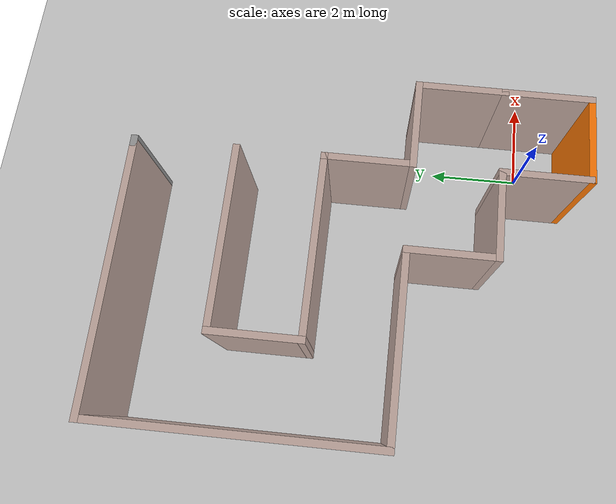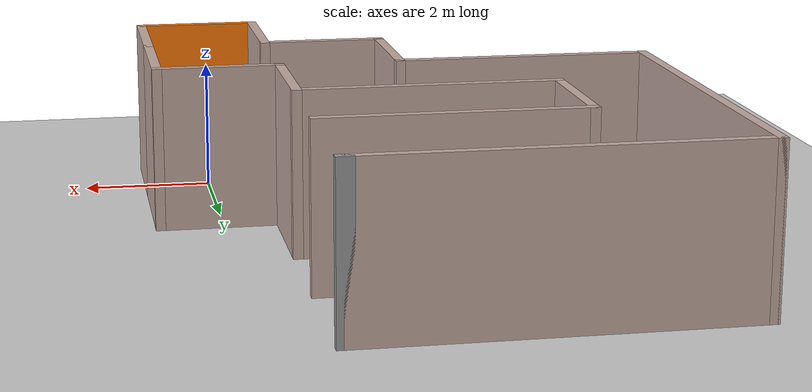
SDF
<?xml version="1.0" ?>
<sdf version="1.4">
  <!-- We use a custom world for the rrbot so that the camera angle is launched correctly -->

  <world name="default">

    <include>
      <uri>model://ground_plane</uri>
    </include>

    <!-- Global light source -->
    <include>
      <uri>model://sun</uri>
    </include>

    <!-- Focus camera on tall pendulum -->
    <gui fullscreen='0'>
      <camera name='user_camera'>
        <pose>4.927360 -4.376610 3.740080 0.000000 0.275643 2.356190</pose>
        <view_controller>orbit</view_controller>
      </camera>
    </gui>

<model name='easy_maze'>
    <pose>-2.79932 3.73959 0 0 -0 0</pose>
    <link name='Wall_10'>
      <collision name='Wall_10_Collision'>
        <geometry>
          <box>
            <size>2 0.15 2.5</size>
          </box>
        </geometry>
        <pose>0 0 1.25 0 -0 0</pose>
      </collision>
      <visual name='Wall_10_Visual'>
        <pose>0 0 1.25 0 -0 0</pose>
        <geometry>
          <box>
            <size>2 0.15 2.5</size>
          </box>
        </geometry>
        <material>
          <script>
            <uri>file://media/materials/scripts/gazebo.material</uri>
            <name>Gazebo/Grey</name>
          </script>
          <ambient>0.760784 0.662745 0.627451 1</ambient>
        </material>
        <meta>
          <layer>0</layer>
        </meta>
      </visual>
      <pose>-1.925 1.7 0 0 -0 1.5708</pose>
    </link>
    <link name='Wall_11'>
      <collision name='Wall_11_Collision'>
        <geometry>
          <box>
            <size>4 0.15 2.5</size>
          </box>
        </geometry>
        <pose>0 0 1.25 0 -0 0</pose>
      </collision>
      <visual name='Wall_11_Visual'>
        <pose>0 0 1.25 0 -0 0</pose>
        <geometry>
          <box>
            <size>4 0.15 2.5</size>
          </box>
        </geometry>
        <material>
          <script>
            <uri>file://media/materials/scripts/gazebo.material</uri>
            <name>Gazebo/Grey</name>
          </script>
          <ambient>0.760784 0.662745 0.627451 1</ambient>
        </material>
        <meta>
          <layer>0</layer>
        </meta>
      </visual>
      <pose>0 2.625 0 0 -0 0</pose>
    </link>
    <link name='Wall_13'>
      <collision name='Wall_13_Collision'>
        <geometry>
          <box>
            <size>2 0.15 2.5</size>
          </box>
        </geometry>
        <pose>0 0 1.25 0 -0 0</pose>
      </collision>
      <visual name='Wall_13_Visual'>
        <pose>0 0 1.25 0 -0 0</pose>
        <geometry>
          <box>
            <size>2 0.15 2.5</size>
          </box>
        </geometry>
        <material>
          <script>
            <uri>file://media/materials/scripts/gazebo.material</uri>
            <name>Gazebo/Grey</name>
          </script>
          <ambient>0.760784 0.662745 0.627451 1</ambient>
        </material>
        <meta>
          <layer>0</layer>
        </meta>
      </visual>
      <pose>1.925 -3.85 0 0 -0 1.5708</pose>
    </link>
    <link name='Wall_14'>
      <collision name='Wall_14_Collision'>
        <geometry>
          <box>
            <size>2 0.15 2.5</size>
          </box>
        </geometry>
        <pose>0 0 1.25 0 -0 0</pose>
      </collision>
      <visual name='Wall_14_Visual'>
        <pose>0 0 1.25 0 -0 0</pose>
        <geometry>
          <box>
            <size>2 0.15 2.5</size>
          </box>
        </geometry>
        <material>
          <script>
            <uri>file://media/materials/scripts/gazebo.material</uri>
            <name>Gazebo/Grey</name>
          </script>
          <ambient>0.760784 0.662745 0.627451 1</ambient>
        </material>
        <meta>
          <layer>0</layer>
        </meta>
      </visual>
      <pose>1 -2.925 0 0 -0 3.14159</pose>
    </link>
    <link name='Wall_15'>
      <collision name='Wall_15_Collision'>
        <geometry>
          <box>
            <size>2 0.15 2.5</size>
          </box>
        </geometry>
        <pose>0 0 1.25 0 -0 0</pose>
      </collision>
      <visual name='Wall_15_Visual'>
        <pose>0 0 1.25 0 -0 0</pose>
        <geometry>
          <box>
            <size>2 0.15 2.5</size>
          </box>
        </geometry>
        <material>
          <script>
            <uri>file://media/materials/scripts/gazebo.material</uri>
            <name>Gazebo/Grey</name>
          </script>
          <ambient>0.760784 0.662745 0.627451 1</ambient>
        </material>
        <meta>
          <layer>0</layer>
        </meta>
      </visual>
      <pose>0.075 -2 0 0 -0 1.5708</pose>
    </link>
    <link name='Wall_16'>
      <collision name='Wall_16_Collision'>
        <geometry>
          <box>
            <size>4 0.15 2.5</size>
          </box>
        </geometry>
        <pose>0 0 1.25 0 -0 0</pose>
      </collision>
      <visual name='Wall_16_Visual'>
        <pose>0 0 1.25 0 -0 0</pose>
        <geometry>
          <box>
            <size>4 0.15 2.5</size>
          </box>
        </geometry>
        <material>
          <script>
            <uri>file://media/materials/scripts/gazebo.material</uri>
            <name>Gazebo/Grey</name>
          </script>
          <ambient>0.760784 0.662745 0.627451 1</ambient>
        </material>
        <meta>
          <layer>0</layer>
        </meta>
      </visual>
      <pose>-1.85 -1.075 0 0 -0 3.14159</pose>
    </link>
    <link name='Wall_17'>
      <collision name='Wall_17_Collision'>
        <geometry>
          <box>
            <size>6 0.15 2.5</size>
          </box>
        </geometry>
        <pose>0 0 1.25 0 -0 0</pose>
      </collision>
      <visual name='Wall_17_Visual'>
        <pose>0 0 1.25 0 -0 0</pose>
        <geometry>
          <box>
            <size>6 0.15 2.5</size>
          </box>
        </geometry>
        <material>
          <script>
            <uri>file://media/materials/scripts/gazebo.material</uri>
            <name>Gazebo/Grey</name>
          </script>
          <ambient>0.760784 0.662745 0.627451 1</ambient>
        </material>
        <meta>
          <layer>0</layer>
        </meta>
      </visual>
      <pose>-3.775 1.85 0 0 -0 1.5708</pose>
    </link>
    <link name='Wall_18'>
      <collision name='Wall_18_Collision'>
        <geometry>
          <box>
            <size>5.75 0.15 2.5</size>
          </box>
        </geometry>
        <pose>0 0 1.25 0 -0 0</pose>
      </collision>
      <visual name='Wall_18_Visual'>
        <pose>0 0 1.25 0 -0 0</pose>
        <geometry>
          <box>
            <size>5.75 0.15 2.5</size>
          </box>
        </geometry>
        <material>
          <script>
            <uri>file://media/materials/scripts/gazebo.material</uri>
            <name>Gazebo/Grey</name>
          </script>
          <ambient>0.760784 0.662745 0.627451 1</ambient>
        </material>
        <meta>
          <layer>0</layer>
        </meta>
      </visual>
      <pose>-0.975 4.775 0 0 -0 0</pose>
    </link>
    <link name='Wall_19'>
      <collision name='Wall_19_Collision'>
        <geometry>
          <box>
            <size>0.25 0.15 2.5</size>
          </box>
        </geometry>
        <pose>0 0 1.25 0 -0 0</pose>
      </collision>
      <visual name='Wall_19_Visual'>
        <pose>0 0 1.25 0 -0 0</pose>
        <geometry>
          <box>
            <size>0.25 0.15 2.5</size>
          </box>
        </geometry>
        <material>
          <script>
            <uri>file://media/materials/scripts/gazebo.material</uri>
            <name>Gazebo/Grey</name>
          </script>
          <ambient>1 1 1 1</ambient>
        </material>
        <meta>
          <layer>0</layer>
        </meta>
      </visual>
      <pose>1.875 4.775 0 0 -0 0</pose>
    </link>
    <link name='Wall_4'>
      <collision name='Wall_4_Collision'>
        <geometry>
          <box>
            <size>2 0.15 2.5</size>
          </box>
        </geometry>
        <pose>0 0 1.25 0 -0 0</pose>
      </collision>
      <visual name='Wall_4_Visual'>
        <pose>0 0 1.25 0 -0 0</pose>
        <geometry>
          <box>
            <size>2 0.15 2.5</size>
          </box>
        </geometry>
        <material>
          <script>
            <uri>file://media/materials/scripts/gazebo.material</uri>
            <name>Gazebo/Grey</name>
          </script>
          <ambient>0.996078 0.47451 0.0196078 1</ambient>
        </material>
        <meta>
          <layer>0</layer>
        </meta>
      </visual>
      <pose>2.85 -4.775 0 0 -0 0</pose>
    </link>
    <link name='Wall_5'>
      <collision name='Wall_5_Collision'>
        <geometry>
          <box>
            <size>2 0.15 2.5</size>
          </box>
        </geometry>
        <pose>0 0 1.25 0 -0 0</pose>
      </collision>
      <visual name='Wall_5_Visual'>
        <pose>0 0 1.25 0 -0 0</pose>
        <geometry>
          <box>
            <size>2 0.15 2.5</size>
          </box>
        </geometry>
        <material>
          <script>
            <uri>file://media/materials/scripts/gazebo.material</uri>
            <name>Gazebo/Grey</name>
          </script>
          <ambient>0.760784 0.662745 0.627451 1</ambient>
        </material>
        <meta>
          <layer>0</layer>
        </meta>
      </visual>
      <pose>3.775 -3.85 0 0 -0 1.5708</pose>
    </link>
    <link name='Wall_6'>
      <collision name='Wall_6_Collision'>
        <geometry>
          <box>
            <size>2 0.15 2.5</size>
          </box>
        </geometry>
        <pose>0 0 1.25 0 -0 0</pose>
      </collision>
      <visual name='Wall_6_Visual'>
        <pose>0 0 1.25 0 -0 0</pose>
        <geometry>
          <box>
            <size>2 0.15 2.5</size>
          </box>
        </geometry>
        <material>
          <script>
            <uri>file://media/materials/scripts/gazebo.material</uri>
            <name>Gazebo/Grey</name>
          </script>
          <ambient>0.760784 0.662745 0.627451 1</ambient>
        </material>
        <meta>
          <layer>0</layer>
        </meta>
      </visual>
      <pose>3.775 -2 0 0 -0 1.5708</pose>
    </link>
    <link name='Wall_7'>
      <collision name='Wall_7_Collision'>
        <geometry>
          <box>
            <size>2 0.15 2.5</size>
          </box>
        </geometry>
        <pose>0 0 1.25 0 -0 0</pose>
      </collision>
      <visual name='Wall_7_Visual'>
        <pose>0 0 1.25 0 -0 0</pose>
        <geometry>
          <box>
            <size>2 0.15 2.5</size>
          </box>
        </geometry>
        <material>
          <script>
            <uri>file://media/materials/scripts/gazebo.material</uri>
            <name>Gazebo/Grey</name>
          </script>
          <ambient>0.760784 0.662745 0.627451 1</ambient>
        </material>
        <meta>
          <layer>0</layer>
        </meta>
      </visual>
      <pose>2.85 -1.075 0 0 -0 3.14159</pose>
    </link>
    <link name='Wall_8'>
      <collision name='Wall_8_Collision'>
        <geometry>
          <box>
            <size>2 0.15 2.5</size>
          </box>
        </geometry>
        <pose>0 0 1.25 0 -0 0</pose>
      </collision>
      <visual name='Wall_8_Visual'>
        <pose>0 0 1.25 0 -0 0</pose>
        <geometry>
          <box>
            <size>2 0.15 2.5</size>
          </box>
        </geometry>
        <material>
          <script>
            <uri>file://media/materials/scripts/gazebo.material</uri>
            <name>Gazebo/Grey</name>
          </script>
          <ambient>0.760784 0.662745 0.627451 1</ambient>
        </material>
        <meta>
          <layer>0</layer>
        </meta>
      </visual>
      <pose>1.925 -0.15 0 0 -0 1.5708</pose>
    </link>
    <link name='Wall_9'>
      <collision name='Wall_9_Collision'>
        <geometry>
          <box>
            <size>4 0.15 2.5</size>
          </box>
        </geometry>
        <pose>0 0 1.25 0 -0 0</pose>
      </collision>
      <visual name='Wall_9_Visual'>
        <pose>0 0 1.25 0 -0 0</pose>
        <geometry>
          <box>
            <size>4 0.15 2.5</size>
          </box>
        </geometry>
        <material>
          <script>
            <uri>file://media/materials/scripts/gazebo.material</uri>
            <name>Gazebo/Grey</name>
          </script>
          <ambient>0.760784 0.662745 0.627451 1</ambient>
        </material>
        <meta>
          <layer>0</layer>
        </meta>
      </visual>
      <pose>0 0.775 0 0 -0 3.14159</pose>
    </link>
    <static>1</static>
  </model>

  </world>
</sdf>
